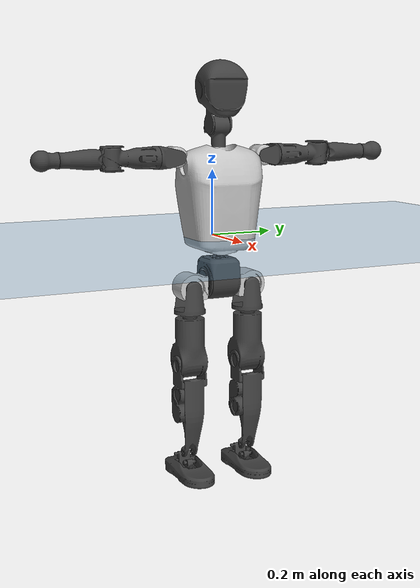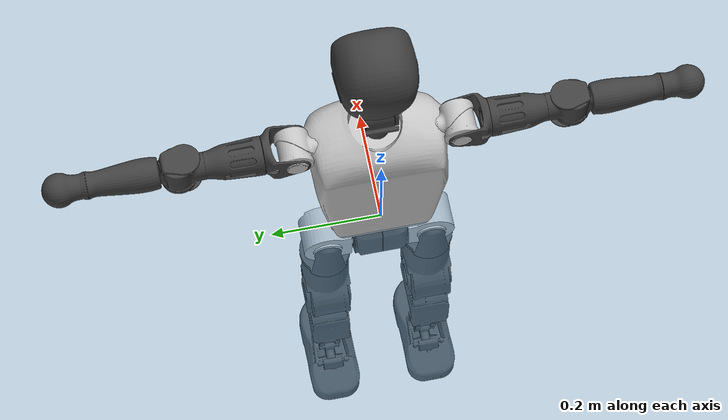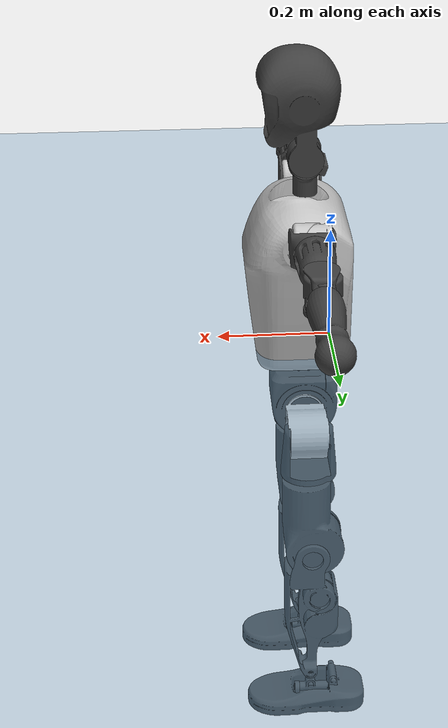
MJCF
<mujoco model="T1">
  <compiler angle="radian" assetdir="assets" balanceinertia="true" inertiafromgeom="false"/>

  <option timestep="0.005" density="1.2" viscosity="2e-05"/>

  <size nkey="1"/>

  <visual>
    <quality shadowsize="8192"/>
    <map shadowclip="0.5"/>
  </visual>

  <default>
    <default class="/">
      <joint armature="0.01" damping="0.01" frictionloss="0.1"/>
      <geom contype="0" conaffinity="0" group="1" solref="-1000 -80"/>
      <site size="0.01 0.005 0.005" group="5"/>
      <general forcelimited="true" biastype="affine" gainprm="25" biasprm="0 -25 -0.6"/>
      <default class="t1">
        <geom rgba="0.25 0.25 0.25 1"/>
        <default class="visual">
          <geom type="mesh" group="2"/>
        </default>
        <default class="collision">
          <geom group="3"/>
        </default>
        <default class="foot">
          <geom size="0.1115 0.05 0.015" type="box" condim="6" group="4" priority="1" solimp="0.015 1 0.015"/>
        </default>
        <default class="reward_collision_sphere">
          <geom group="5" rgba="1 0 0 1"/>
        </default>
      </default>
    </default>
  </default>

  <asset>
    <texture type="skybox" colorspace="auto" name="//unnamed_texture_0" builtin="gradient" rgb1="0.95 0.95 0.95" rgb2="0.95 0.95 0.95" width="100" height="600"/>
    <texture type="2d" colorspace="auto" name="texplane" builtin="checker" rgb1="0.345 0.575 0.748" rgb2="0.345 0.575 0.748" markrgb="1 1 1" width="512" height="512"/>
    <material name="MatPlane" class="/" texture="texplane" texuniform="true" texrepeat="2 2" specular="0.9"/>
    <mesh name="Trunk" class="/" file="Trunk.stl"/>
    <mesh name="H1" class="/" file="H1.stl"/>
    <mesh name="H2" class="/" file="H2.stl"/>
    <mesh name="AL1" class="/" file="AL1.stl"/>
    <mesh name="AL2" class="/" file="AL2.stl"/>
    <mesh name="AL3" class="/" file="AL3.stl"/>
    <mesh name="left_hand_link" class="/" file="left_hand_link.stl"/>
    <mesh name="AR1" class="/" file="AR1.stl"/>
    <mesh name="AR2" class="/" file="AR2.stl"/>
    <mesh name="AR3" class="/" file="AR3.stl"/>
    <mesh name="right_hand_link" class="/" file="right_hand_link.stl"/>
    <mesh name="Waist" class="/" file="Waist.stl"/>
    <mesh name="Hip_Pitch_Left" class="/" file="Hip_Pitch_Left.stl"/>
    <mesh name="Hip_Roll_Left" class="/" file="Hip_Roll_Left.stl"/>
    <mesh name="Hip_Yaw_Left" class="/" file="Hip_Yaw_Left.stl"/>
    <mesh name="Shank_Left" class="/" file="Shank_Left.stl"/>
    <mesh name="Ankle_Cross_Left" class="/" file="Ankle_Cross_Left.stl"/>
    <mesh name="left_foot_link" class="/" file="left_foot_link.stl"/>
    <mesh name="Hip_Pitch_Right" class="/" file="Hip_Pitch_Right.stl"/>
    <mesh name="Hip_Roll_Right" class="/" file="Hip_Roll_Right.stl"/>
    <mesh name="Hip_Yaw_Right" class="/" file="Hip_Yaw_Right.stl"/>
    <mesh name="Shank_Right" class="/" file="Shank_Right.stl"/>
    <mesh name="Ankle_Cross_Right" class="/" file="Ankle_Cross_Right.stl"/>
    <mesh name="right_foot_link" class="/" file="right_foot_link.stl"/>
  </asset>

  <worldbody>
    <geom name="floor" class="/" size="100 100 0.125" type="plane" group="0" material="MatPlane"/>
    <light name="toplight_shadow" class="/" pos="0 0 5" dir="0.0990148 0.0990148 -0.990148" type="directional" ambient="0.04 0.04 0.04" diffuse="0.55 0.55 0.55" specular="0.12 0.12 0.12"/>
    <light name="toplight_fill" class="/" pos="0 0 5" dir="0.0990148 0.0990148 -0.990148" type="directional" castshadow="false" ambient="0.04 0.04 0.04" diffuse="0.3 0.3 0.3" specular="0.08 0.08 0.08"/>
    <body name="trunk" childclass="t1" pos="-0.000130529 -0.000789276 -0.000770822" quat="1 0.000332776 -0.000122739 0.000438508">
      <inertial pos="0.04099 -0.000594024 0.117659" quat="0.999955 0.000106883 -0.00946093 0.00016037" mass="9.34999" diaginertia="0.0217572 0.0504439 0.0975837"/>
      <joint name="//unnamed_joint_0" type="free" armature="0" damping="0" frictionloss="0"/>
      <geom name="//unnamed_geom_1" class="visual" rgba="0.76 0.76 0.76 1" mesh="Trunk"/>
      <geom name="//unnamed_geom_2" class="collision" size="0.0697846 0.0930461 0.139569" pos="0.0449931 0 0.134204" type="box"/>
      <geom name="//unnamed_geom_3" class="reward_collision_sphere" size="0.107003" pos="0.0449931 0 0.111836"/>
      <geom name="//unnamed_geom_4" class="reward_collision_sphere" size="0.0139569" pos="0.0449931 0.0784664 0"/>
      <geom name="//unnamed_geom_5" class="reward_collision_sphere" size="0.0139569" pos="0.0449931 -0.0784664 0"/>
      <geom name="//unnamed_geom_6" class="reward_collision_sphere" size="0.0139569" pos="0.0449931 0.0987754 0.201306"/>
      <geom name="//unnamed_geom_7" class="reward_collision_sphere" size="0.0139569" pos="0.0449931 -0.0987754 0.201306"/>
      <site name="imu" pos="-0.00346439 -0.00100854 -0.000796236" size="0.00930461"/>
      <camera name="track" pos="0 -1.84627 0" quat="0.707107 0.707107 0 0" mode="trackcom"/>
      <camera name="ego_camera" pos="0.091486 0 0.469713" quat="-0.5 -0.5 0.5 0.5"/>
      <body name="H1" pos="0.0456576 -0.000335061 0.271138" quat="1 -0.000151768 -3.34708e-05 -0.000264084">
        <inertial pos="-0.0013585 -0.00239115 0.0643265" quat="0.763268 -0.0134821 0.0015544 0.64594" mass="0.356124" diaginertia="5.69506e-05 0.000151189 0.000266077"/>
        <joint name="AAHead_yaw" pos="0 0 0" axis="0.000201434 -0.000222065 1" range="-1.5971 1.57118" armature="0.00931858" damping="0.0148051" frictionloss="0.0900597"/>
        <geom name="//unnamed_geom_8" class="visual" mesh="H1"/>
        <body name="H2" pos="8.46122e-05 -0.000118335 0.0687165" quat="1 0.000513823 -6.79311e-05 6.14749e-06">
          <inertial pos="0.00535845 0.00122943 0.110142" quat="0.988483 0.106014 -0.0743053 -0.0783603" mass="0.503081" diaginertia="0.000487534 0.00130016 0.00302267"/>
          <joint name="Head_pitch" pos="0 0 0" axis="0.00257508 -0.999994 -0.00249598" range="-1.2122 0.365936" armature="0.00937366" damping="0.0111499" frictionloss="0.0975235"/>
          <geom name="//unnamed_geom_9" class="visual" mesh="H2"/>
          <geom name="//unnamed_geom_10" class="collision" size="0.0744369" pos="0.00749885 0 0.12302"/>
          <geom name="//unnamed_geom_11" class="reward_collision_sphere" size="0.0837415" pos="0.0149977 0 0.111836"/>
        </body>
      </body>
      <body name="AL1" pos="0.0450592 0.0981664 0.244466" quat="1 -0.000175555 0.000430614 -0.000247752">
        <inertial pos="-0.00178269 0.0420861 0.000931171" quat="0.504389 0.496107 -0.502421 0.497034" mass="0.431554" diaginertia="0.000327602 0.000891423 0.000516865"/>
        <joint name="Left_Shoulder_Pitch" pos="0 0 0" axis="0.00168375 0.999998 -0.00110857" range="-3.31432 1.22075" armature="0.00918386" damping="0.00296618" frictionloss="0.0963941"/>
        <geom name="//unnamed_geom_12" class="visual" rgba="0.76 0.76 0.76 1" mesh="AL1"/>
        <body name="AL2" pos="0.00131945 0.0438254 -0.000485581" quat="1 -3.61955e-05 -6.40923e-05 0.000198268">
          <inertial pos="0.00320269 0.0351907 -0.00054837" quat="0.485116 0.514273 -0.487358 0.512511" mass="0.128492" diaginertia="9.50484e-05 0.000234078 0.000309576"/>
          <joint name="Left_Shoulder_Roll" pos="0 0 0" axis="-0.999989 -0.00409328 -0.00246527" range="-1.57018 1.73493" armature="0.00957263" damping="0.00559651" frictionloss="0.0895812"/>
          <geom name="//unnamed_geom_13" class="visual" mesh="AL2"/>
          <body name="AL3" pos="-0.000129067 0.0569251 -0.000242444" quat="1 0.000227061 0.000194547 -0.000196914">
            <inertial pos="-0.000780036 0.0787491 -1.46979e-06" quat="0.706669 0.707544 0.000144087 -5.13425e-05" mass="0.825106" diaginertia="0.00302187 0.0085863 0.00110003"/>
            <joint name="Left_Elbow_Pitch" pos="0 0 0" axis="-0.00118366 -0.999998 0.00136831" range="-2.26402 2.26793" armature="0.0092155" damping="0.0087564" frictionloss="0.0895134"/>
            <geom name="//unnamed_geom_14" class="visual" mesh="AL3"/>
            <geom name="//unnamed_geom_15" class="collision" size="0.0279138 0.0697846" pos="0 0.0461567 0" quat="0.707105 0.707108 0 0" type="cylinder"/>
            <geom name="//unnamed_geom_16" class="reward_collision_sphere" size="0.0334966"/>
            <body name="left_hand_link" pos="0.00119491 0.135194 0.00208473" quat="1 0.000259414 -0.000140156 0.000110211">
              <inertial pos="-0.000153884 0.100412 -0.000123227" quat="0.70754 0.706671 0.00144231 -0.000139179" mass="0.269759" diaginertia="0.00193747 0.00547471 0.000380903"/>
              <joint name="Left_Elbow_Yaw" pos="0 0 0" axis="-0.005277 -0.00132521 0.999985" range="-2.44853 -0.00485447" armature="0.00948955" damping="0.0103851" frictionloss="0.0891998"/>
              <geom name="//unnamed_geom_17" class="visual" mesh="left_hand_link"/>
              <geom name="//unnamed_geom_18" class="collision" size="0.0279138 0.0814154" pos="0 0.120007 0" quat="0.707105 0.707108 0 0" type="cylinder"/>
              <geom name="//unnamed_geom_19" class="reward_collision_sphere" size="0.0465231"/>
              <geom name="//unnamed_geom_20" class="reward_collision_sphere" size="0.0325661" pos="0 0.101545 0"/>
              <geom name="//unnamed_geom_21" class="reward_collision_sphere" size="0.0325661" pos="0 0.198474 0"/>
            </body>
          </body>
        </body>
      </body>
      <body name="AR1" pos="0.0423416 -0.0967495 0.244907" quat="1 2.08024e-06 0.000660891 0.000155948">
        <inertial pos="-0.000406688 -0.0408263 0.0001463" quat="0.505563 0.493035 -0.502677 0.498637" mass="0.431273" diaginertia="0.000326713 0.000874722 0.000514824"/>
        <joint name="Right_Shoulder_Pitch" pos="0 0 0" axis="-0.000200095 -1 -0.000278565" range="-1.22574 3.29366" armature="0.00902516" damping="0.00736179" frictionloss="0.0942983"/>
        <geom name="//unnamed_geom_22" class="visual" rgba="0.76 0.76 0.76 1" mesh="AR1"/>
        <body name="AR2" pos="-0.00076542 -0.0434583 -0.00110043" quat="1 -0.000114876 -0.000270915 -1.8156e-06">
          <inertial pos="0.0035958 -0.0350585 -0.000207876" quat="0.512773 0.487497 -0.511268 0.487869" mass="0.128412" diaginertia="9.63236e-05 0.000229872 0.000307743"/>
          <joint name="Right_Shoulder_Roll" pos="0 0 0" axis="-0.999984 0.00149091 -0.00542756" range="-1.7398 1.5763" armature="0.00928732" damping="0.00157785" frictionloss="0.0940599"/>
          <geom name="//unnamed_geom_23" class="visual" mesh="AR2"/>
          <body name="AR3" pos="-0.000324283 -0.0560254 0.000263468" quat="1 3.28607e-07 -1.54846e-07 5.2442e-07">
            <inertial pos="-0.00140748 -0.0790721 0.000300405" quat="0.709075 0.705129 0.000192596 0.00233888" mass="0.835938" diaginertia="0.00310407 0.00866103 0.00108769"/>
            <joint name="Right_Elbow_Pitch" pos="0 0 0" axis="0.00169971 0.999987 0.00473545" range="-2.27149 2.28861" armature="0.00944846" damping="0.00893773" frictionloss="0.0920448"/>
            <geom name="//unnamed_geom_24" class="visual" mesh="AR3"/>
            <geom name="//unnamed_geom_25" class="collision" size="0.0279138 0.0697846" pos="0 -0.0461567 0" quat="0.707105 0.707108 0 0" type="cylinder"/>
            <geom name="//unnamed_geom_26" class="reward_collision_sphere" size="0.0334966"/>
            <body name="right_hand_link" pos="-0.000489567 -0.135487 0.000411247" quat="1 5.35714e-05 2.06379e-05 2.02631e-05">
              <inertial pos="0.000422527 -0.101473 0.000989371" quat="0.705891 0.70832 0.000119085 -0.000263399" mass="0.266638" diaginertia="0.00194328 0.00555899 0.00037604"/>
              <joint name="Right_Elbow_Yaw" pos="0 0 0" axis="-0.00124463 -0.000166982 0.999999" stiffness="0.00339229" range="-0.00210522 2.43962" armature="0.00935991" damping="0.00959585" frictionloss="0.0923998"/>
              <geom name="//unnamed_geom_27" class="visual" mesh="right_hand_link"/>
              <geom name="//unnamed_geom_28" class="collision" size="0.0279138 0.0814154" pos="0 -0.120007 0" quat="0.707105 0.707108 0 0" type="cylinder"/>
              <geom name="//unnamed_geom_29" class="reward_collision_sphere" size="0.0465231"/>
              <geom name="//unnamed_geom_30" class="reward_collision_sphere" size="0.0325661" pos="0 -0.101545 0"/>
              <geom name="//unnamed_geom_31" class="reward_collision_sphere" size="0.0325661" pos="0 -0.198474 0"/>
            </body>
          </body>
        </body>
      </body>
      <body name="Waist" pos="0.0466725 -0.000667663 -0.129888" quat="1 7.3519e-05 8.28743e-05 -1.48761e-05">
        <inertial pos="0.000540541 -0.000898515 0.00743514" quat="0.983513 0.000678859 -0.180806 0.0032511" mass="2.09311" diaginertia="0.00129312 0.00359486 0.00843328"/>
        <joint name="Waist" pos="0 0 0" axis="-1.73167e-06 -5.3057e-06 1" stiffness="0.0016257" range="-1.55966 1.55211" armature="0.00932676" damping="0" frictionloss="0.0932971"/>
        <geom name="//unnamed_geom_32" class="visual" mesh="Waist"/>
        <body name="Hip_Pitch_Left" pos="0.000840573 0.0987356 -0.000127375" quat="1 -0.000287068 -1.95188e-05 -0.000240112">
          <inertial pos="0.00143813 -0.00702138 -0.0215428" quat="0.975192 0.220913 0.0140533 0.000912184" mass="0.828423" diaginertia="0.000423837 0.000975667 0.00220737"/>
          <joint name="Left_Hip_Pitch" pos="0 0 0" axis="0.00300073 0.999981 0.00532928" range="-1.80284 1.5691" armature="0.00930748" damping="0.010388" frictionloss="0.0929088"/>
          <geom name="//unnamed_geom_33" class="visual" rgba="0.76 0.76 0.76 1" mesh="Hip_Pitch_Left"/>
          <body name="Hip_Roll_Left" pos="-0.000988932 0.000785233 -0.0236289" quat="1 -4.58643e-05 -6.24969e-05 -6.95819e-05">
            <inertial pos="0.00163761 -0.000511159 -0.0602949" quat="0.708007 -0.00216166 -0.00491181 0.706185" mass="0.307876" diaginertia="0.000408177 0.000998898 0.000891911"/>
            <joint name="Left_Hip_Roll" pos="0 0 0" axis="-0.999996 0.0025126 -0.00147682" range="-1.58042 0.203725" armature="0.00924437" damping="0.00634137" frictionloss="0.0957716"/>
            <geom name="//unnamed_geom_34" class="visual" mesh="Hip_Roll_Left"/>
            <geom name="//unnamed_geom_35" class="reward_collision_sphere" size="0.0511754"/>
            <body name="Hip_Yaw_Left" pos="0.000890527 0.000423481 -0.0912893" quat="1 -2.86146e-06 8.60441e-06 3.98817e-05">
              <inertial pos="-0.00476171 -0.000769454 -0.10049" quat="0.697973 -0.0332259 -0.032707 0.714605" mass="1.75884" diaginertia="0.00620254 0.0169045 0.00454419"/>
              <joint name="Left_Hip_Yaw" pos="0 0 0" axis="-0.00122997 0.00356492 -0.999993" range="-1.0069 0.997467" armature="0.00951149" damping="0.0127992" frictionloss="0.0916658"/>
              <geom name="//unnamed_geom_36" class="visual" mesh="Hip_Yaw_Left"/>
              <geom name="//unnamed_geom_37" class="collision" size="0.0465231 0.0744369" type="cylinder"/>
              <body name="Shank_Left" pos="-0.00945359 0.000589304 -0.150607" quat="1 0.000482438 0.000160139 1.90958e-05">
                <inertial pos="-0.00550901 -0.000799347 -0.138492" quat="0.99768 0.000808516 -0.0231724 0.0640122" mass="1.3779" diaginertia="0.00811857 0.0229187 0.00320228"/>
                <joint name="Left_Knee_Pitch" pos="0 0 0" axis="0.00102656 0.999998 0.00174227" range="-0.00396642 2.34158" armature="0.00903898" damping="0.00847726" frictionloss="0.0907762"/>
                <geom name="//unnamed_geom_38" class="visual" mesh="Shank_Left"/>
                <geom name="//unnamed_geom_39" class="collision" size="0.0465231 0.0697846" pos="0 0 -0.134204" type="cylinder"/>
                <geom name="//unnamed_geom_40" class="reward_collision_sphere" size="0.06048"/>
                <body name="Ankle_Cross_Left" pos="-0.00115471 0.000385977 -0.313653" quat="1 -8.06509e-05 3.91404e-05 1.98041e-05">
                  <inertial pos="-0.00241365 0.000124673 -0.00920456" quat="0.446973 0.548813 0.549652 0.443736" mass="0.058426" diaginertia="6.85763e-06 1.7088e-05 1.98044e-05"/>
                  <joint name="Left_Ankle_Pitch" pos="0 0 0" axis="-0.00247043 0.99999 -0.00371487" stiffness="0.000319709" range="-0.864636 0.34434" armature="0.00944082" damping="0.00587591" frictionloss="0.092841"/>
                  <geom name="//unnamed_geom_41" class="visual" mesh="Ankle_Cross_Left"/>
                  <body name="left_foot_link" pos="-0.000986703 -0.000270763 -0.0139015" quat="1 -0.000179149 0.000352876 -0.000212158">
                    <inertial pos="-0.000142198 0.000255066 -0.00890765" quat="-0.000387987 0.620798 -0.000372775 0.783971" mass="0.560485" diaginertia="0.000647493 0.00161054 0.00389281"/>
                    <joint name="Left_Ankle_Roll" pos="0 0 0" axis="-0.999997 -0.000747348 0.00246411" range="-0.429008 0.423082" armature="0.00929007" damping="0.0140566" frictionloss="0.0933455"/>
                    <geom name="//unnamed_geom_42" class="visual" mesh="left_foot_link"/>
                    <geom name="left_foot" class="foot" size="0.105414 0.0502516 0.0138036" pos="0.00749885 0 -0.0167755"/>
                    <geom name="//unnamed_geom_44" class="reward_collision_sphere" size="0.048384" pos="0.00749885 0 -0.0167755"/>
                    <geom name="//unnamed_geom_45" class="reward_collision_sphere" size="0.0279138" pos="0.0712391 -0.0212321 -0.0167755"/>
                    <geom name="//unnamed_geom_46" class="reward_collision_sphere" size="0.0279138" pos="-0.0524919 -0.0212321 -0.0167755"/>
                    <site name="left_foot" class="foot" pos="0.00749885 0 -0.0167755" size="0.00930461"/>
                  </body>
                </body>
              </body>
            </body>
          </body>
        </body>
        <body name="Hip_Pitch_Right" pos="-0.000450071 -0.0967003 0.000175509" quat="1 -1.26805e-05 -2.91449e-07 -8.74907e-06">
          <inertial pos="4.40437e-05 0.00591859 -0.019853" quat="0.973521 -0.227879 0.0164365 -0.00753735" mass="0.823133" diaginertia="0.00043048 0.000980706 0.00216245"/>
          <joint name="Right_Hip_Pitch" pos="0 0 0" axis="0.000876011 -0.999999 -0.000508704" range="-1.58811 1.7944" armature="0.00924871" damping="0.00298895" frictionloss="0.097378"/>
          <geom name="//unnamed_geom_47" class="visual" rgba="0.76 0.76 0.76 1" mesh="Hip_Pitch_Right"/>
          <body name="Hip_Roll_Right" pos="-0.000957098 -0.000159413 -0.0225005" quat="1 -1.87944e-05 -2.53977e-05 2.28668e-05">
            <inertial pos="0.00120021 -0.000321142 -0.0609552" quat="0.707307 -0.00598326 -0.00603033 0.706855" mass="0.310328" diaginertia="0.000406342 0.00101081 0.000897294"/>
            <joint name="Right_Hip_Roll" pos="0 0 0" axis="-0.999999 0.00125244 -0.000126135" range="-0.216851 1.58279" armature="0.00936969" damping="0.0121151" frictionloss="0.0925871"/>
            <geom name="//unnamed_geom_48" class="visual" mesh="Hip_Roll_Right"/>
            <geom name="//unnamed_geom_49" class="reward_collision_sphere" size="0.0511754"/>
            <body name="Hip_Yaw_Right" pos="0.000193131 -1.52496e-05 -0.0917621" quat="1 3.32156e-06 -4.64859e-06 -3.17552e-05">
              <inertial pos="-0.00502531 0.00082315 -0.0994407" quat="0.714527 -0.0330699 -0.0335375 0.698021" mass="1.7327" diaginertia="0.00604593 0.0166643 0.00450609"/>
              <joint name="Right_Hip_Yaw" pos="0 0 0" axis="0.000908371 9.47291e-05 -1" range="-0.995945 1.00405" armature="0.00927319" damping="0.0076954" frictionloss="0.0926924"/>
              <geom name="//unnamed_geom_50" class="visual" mesh="Hip_Yaw_Right"/>
              <geom name="//unnamed_geom_51" class="collision" size="0.0465231 0.0744369" type="cylinder"/>
              <body name="Shank_Right" pos="-0.0102177 -0.000471153 -0.149175" quat="1 -1.99592e-05 1.4608e-05 3.16194e-05">
                <inertial pos="-0.0062002 -0.000643083 -0.136489" quat="0.999323 -0.00421706 -0.0201342 -0.0304858" mass="1.41284" diaginertia="0.00820235 0.0230282 0.00338849"/>
                <joint name="Right_Knee_Pitch" pos="0 0 0" axis="0.00135698 -0.999968 -0.00783964" range="-2.33821 -0.0119902" armature="0.0093869" damping="0.00652708" frictionloss="0.0960909"/>
                <geom name="//unnamed_geom_52" class="visual" mesh="Shank_Right"/>
                <geom name="//unnamed_geom_53" class="collision" size="0.0465231 0.0697846" pos="0 0 -0.134204" type="cylinder"/>
                <geom name="//unnamed_geom_54" class="reward_collision_sphere" size="0.06048"/>
                <body name="Ankle_Cross_Right" pos="0.00140119 0.000499164 -0.313421" quat="1 -0.000170227 -0.000174356 0.000158523">
                  <inertial pos="-0.00236817 0.00118064 -0.0089062" quat="0.445009 0.548207 0.553701 0.44142" mass="0.0594852" diaginertia="6.8958e-06 1.7109e-05 1.98663e-05"/>
                  <joint name="Right_Ankle_Pitch" pos="0 0 0" axis="0.000619866 -1 1.52315e-07" range="-0.322185 0.851763" armature="0.00903618" damping="0.00609701" frictionloss="0.0933451"/>
                  <geom name="//unnamed_geom_55" class="visual" mesh="Ankle_Cross_Right"/>
                  <body name="right_foot_link" pos="0.000502705 -0.00105815 -0.0139027" quat="1 -0.000130912 -4.95211e-05 -5.06174e-06">
                    <inertial pos="-9.52237e-05 0.000610967 -0.00909843" quat="-0.000781958 0.621115 0.00234622 0.783716" mass="0.547543" diaginertia="0.000637738 0.00161259 0.00382279"/>
                    <joint name="Right_Ankle_Roll" pos="0 0 0" axis="-0.999999 9.58472e-05 -0.00143471" stiffness="4.19774e-05" range="-0.440329 0.432772" armature="0.00958334" damping="0.0125849" frictionloss="0.0995301"/>
                    <geom name="//unnamed_geom_56" class="visual" mesh="right_foot_link"/>
                    <geom name="right_foot" class="foot" size="0.101356 0.0430691 0.0148346" pos="0.00749885 0 -0.0167755"/>
                    <geom name="//unnamed_geom_58" class="reward_collision_sphere" size="0.0372185"/>
                    <geom name="//unnamed_geom_59" class="reward_collision_sphere" size="0.0279138" pos="0.00749885 0 -0.0167755"/>
                    <geom name="//unnamed_geom_60" class="reward_collision_sphere" size="0.0279138" pos="0.0712391 0.0212321 -0.0167755"/>
                    <geom name="//unnamed_geom_61" class="reward_collision_sphere" size="0.0279138" pos="-0.0524919 0.0212321 -0.0167755"/>
                    <site name="right_foot" class="foot" pos="0.00749885 0 -0.0167755" size="0.00930461"/>
                  </body>
                </body>
              </body>
            </body>
          </body>
        </body>
      </body>
    </body>
  </worldbody>

  <contact>
    <pair class="/" geom1="floor" geom2="left_foot" name="//unnamed_contact_0"/>
    <pair class="/" geom1="floor" geom2="right_foot" name="//unnamed_contact_1"/>
  </contact>

  <actuator>
    <general name="AAHead_yaw" class="/" joint="AAHead_yaw" forcerange="-6.49541 6.49541" gainprm="22.9625" biasprm="0 -22.9625 -0.550049"/>
    <general name="Head_pitch" class="/" joint="Head_pitch" forcerange="-6.30268 6.30268" gainprm="22.9625" biasprm="0 -22.9625 -0.550049"/>
    <general name="Left_Shoulder_Pitch" class="/" joint="Left_Shoulder_Pitch" forcerange="-17.1661 17.1661" gainprm="22.9625" biasprm="0 -22.9625 -0.550049"/>
    <general name="Left_Shoulder_Roll" class="/" joint="Left_Shoulder_Roll" forcerange="-16.7476 16.7476" gainprm="22.9625" biasprm="0 -22.9625 -0.550049"/>
    <general name="Left_Elbow_Pitch" class="/" joint="Left_Elbow_Pitch" forcerange="-16.7337 16.7337" gainprm="22.9625" biasprm="0 -22.9625 -0.550049"/>
    <general name="Left_Elbow_Yaw" class="/" joint="Left_Elbow_Yaw" forcerange="-16.8702 16.8702" gainprm="22.9625" biasprm="0 -22.9625 -0.550049"/>
    <general name="Right_Shoulder_Pitch" class="/" joint="Right_Shoulder_Pitch" forcerange="-17.102 17.102" gainprm="22.9625" biasprm="0 -22.9625 -0.550049"/>
    <general name="Right_Shoulder_Roll" class="/" joint="Right_Shoulder_Roll" forcerange="-16.2087 16.2087" gainprm="22.9625" biasprm="0 -22.9625 -0.550049"/>
    <general name="Right_Elbow_Pitch" class="/" joint="Right_Elbow_Pitch" forcerange="-16.7434 16.7434" gainprm="22.9625" biasprm="0 -22.9625 -0.550049"/>
    <general name="Right_Elbow_Yaw" class="/" joint="Right_Elbow_Yaw" forcerange="-16.5019 16.5019" gainprm="22.9625" biasprm="0 -22.9625 -0.550049"/>
    <general name="Waist" class="/" joint="Waist" forcerange="-28.1621 28.1621" gainprm="22.9625" biasprm="0 -22.9625 -0.550049"/>
    <general name="Left_Hip_Pitch" class="/" joint="Left_Hip_Pitch" forcerange="-41.5033 41.5033" gainprm="22.9625" biasprm="0 -22.9625 -0.550049"/>
    <general name="Left_Hip_Roll" class="/" joint="Left_Hip_Roll" forcerange="-28.8918 28.8918" gainprm="22.9625" biasprm="0 -22.9625 -0.550049"/>
    <general name="Left_Hip_Yaw" class="/" joint="Left_Hip_Yaw" forcerange="-28.8101 28.8101" gainprm="22.9625" biasprm="0 -22.9625 -0.550049"/>
    <general name="Left_Knee_Pitch" class="/" joint="Left_Knee_Pitch" forcerange="-56.9452 56.9452" gainprm="22.9625" biasprm="0 -22.9625 -0.550049"/>
    <general name="Left_Ankle_Pitch" class="/" joint="Left_Ankle_Pitch" forcerange="-19.2248 19.2248" gainprm="22.9625" biasprm="0 -22.9625 -0.550049"/>
    <general name="Left_Ankle_Roll" class="/" joint="Left_Ankle_Roll" forcerange="-14.4481 14.4481" gainprm="22.9625" biasprm="0 -22.9625 -0.550049"/>
    <general name="Right_Hip_Pitch" class="/" joint="Right_Hip_Pitch" forcerange="-41.4875 41.4875" gainprm="22.9625" biasprm="0 -22.9625 -0.550049"/>
    <general name="Right_Hip_Roll" class="/" joint="Right_Hip_Roll" forcerange="-27.5313 27.5313" gainprm="22.9625" biasprm="0 -22.9625 -0.550049"/>
    <general name="Right_Hip_Yaw" class="/" joint="Right_Hip_Yaw" forcerange="-27.1196 27.1196" gainprm="22.9625" biasprm="0 -22.9625 -0.550049"/>
    <general name="Right_Knee_Pitch" class="/" joint="Right_Knee_Pitch" forcerange="-56.398 56.398" gainprm="22.9625" biasprm="0 -22.9625 -0.550049"/>
    <general name="Right_Ankle_Pitch" class="/" joint="Right_Ankle_Pitch" forcerange="-18.5921 18.5921" gainprm="22.9625" biasprm="0 -22.9625 -0.550049"/>
    <general name="Right_Ankle_Roll" class="/" joint="Right_Ankle_Roll" forcerange="-14.0386 14.0386" gainprm="22.9625" biasprm="0 -22.9625 -0.550049"/>
  </actuator>

  <sensor>
    <gyro site="imu" name="imu_angular_velocity"/>
    <velocimeter site="imu" name="imu_linear_velocity"/>
    <framelinvel objtype="site" objname="left_foot" name="left_foot_global_linear_velocity"/>
    <framelinvel objtype="site" objname="right_foot" name="right_foot_global_linear_velocity"/>
  </sensor>

  <keyframe>
    <key name="home" qpos="0 0 0.6385 1 0 0 0 0 0 0 1.4 0 -0.4 0 -1.4 0 0.4 0 -0.4 0 0 0.8 -0.4 0 0.4 0 0 -0.8 0.4 0"/>
  </keyframe>
</mujoco>
